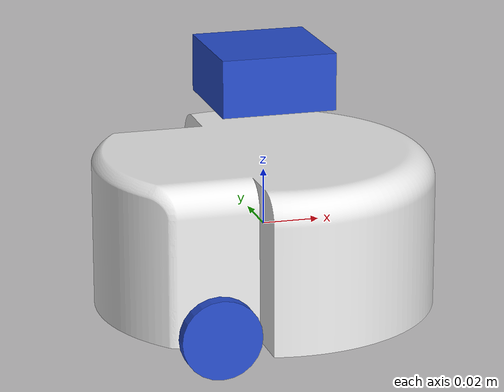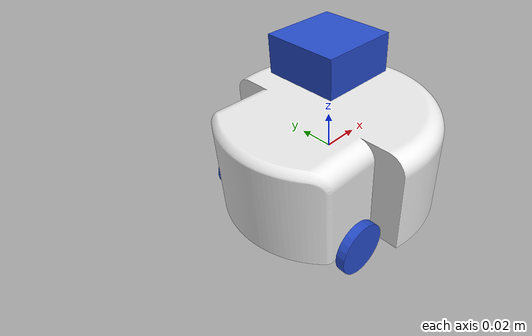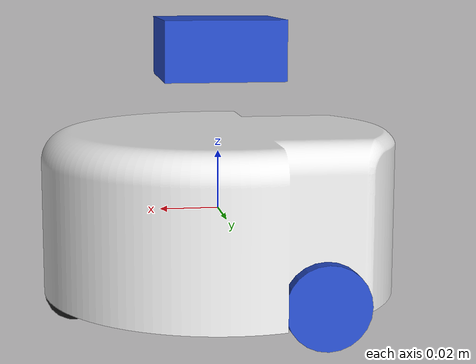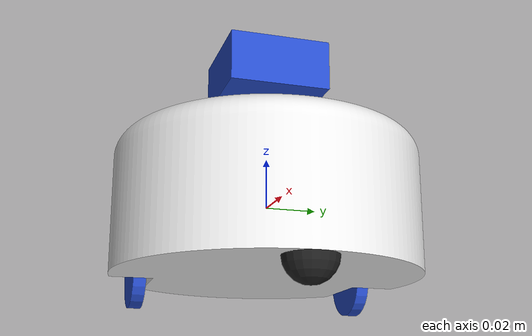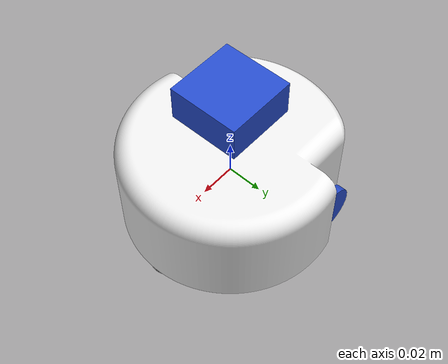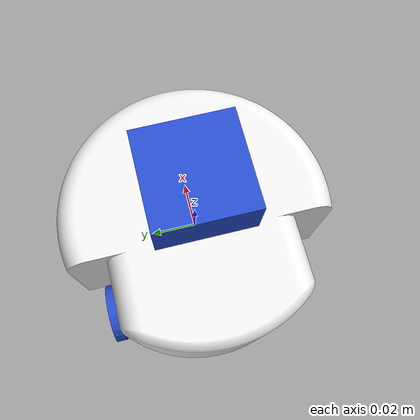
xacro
<?xml version="1.0"?>
<robot xmlns:xacro="http://www.ros.org/wiki/xacro" name="MyRobbie">

    <!-- Example link -->
    <xacro:include filename="robot_core.xacro"/>
    <xacro:include filename="properties.xacro"/>
    <xacro:include filename="inertial_macros.xacro"/>
    <xacro:include filename="gazebo_control.xacro"/>
    <xacro:include filename="gazebo_sensor.xacro"/>

</robot>

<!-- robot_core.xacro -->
<robot xmlns:xacro="http://www.ros.org/wiki/xacro">

    <xacro:include filename="inertial_macros.xacro"/>

    <!-- dimension de las piezas de robot -->
    <xacro:property name="ancho_r" value="0.005" />
    <xacro:property name="radio_r" value="0.014" />
    <xacro:property name="radio_e" value="0.01" />

    <!-- link para la odometria -->
    <link name="base_footprint">
    </link>

    <joint name="base_footprint_joint" type="fixed">
        <parent link="base_link"/>
        <child link="base_footprint"/>
        <origin xyz="0 0 0"/>
    </joint>

    <!-- base del robot -->
    <link name="base_link">
    </link>

    <joint name="base_link" type="fixed">
        <parent link="base_link"/>
        <child link="chassis"/>
        <origin xyz="0 0 0"/>
    </joint>

    <!-- chassis link -->
    <link name="chassis">
        <visual>
            <origin xyz="0.0 0 0.0"/>
            <geometry>
                <mesh filename="file://$(find proyecto_myrobbie3)/meshes/chassis.dae"/>
            </geometry>
            <material name="white"/>
        </visual>
        <collision>
            <origin xyz="0.0 0.0 0.0"/>
            <geometry>
                <mesh filename="file://$(find proyecto_myrobbie3)/meshes/chassis.dae"/>
            </geometry>
        </collision>

        <xacro:inertial_box mass="0.32" x="0.12" y="0.08" z="0.05">
            <origin xyz="0.0 0.0 0.0" rpy="0.0 0.0 0.0"/>
        </xacro:inertial_box>
    </link>

    <!-- left wheel joint -->
    <joint name="left_wheel_joint" type="continuous">
        <parent link="chassis"/>
        <child link="left_wheel"/>
        <origin xyz="-0.0283 0.0465 -0.0235" rpy="-${pi/2} 0 0"/>
        <axis xyz="0 0 1"/>
    </joint>

    <!-- left wheel link -->
    <link name="left_wheel">
        <visual>
            <geometry>
                <cylinder radius="${radio_r}" length="${ancho_r}"/>
            </geometry>
            <material name="blue"/>
        </visual>
        <collision>
            <geometry>
                <cylinder radius="${radio_r}" length="${ancho_r}"/>
            </geometry>
        </collision>

        <xacro:inertial_cylinder mass="0.04" length="${ancho_r}" radius="${radio_r}">
            <origin xyz="0 0 0" rpy="0 0 0"/>
        </xacro:inertial_cylinder>
    </link>

    <!-- right wheel joint -->
    <joint name="right_wheel_joint" type="continuous">
        <parent link="chassis"/>
        <child link="right_wheel"/>
        <origin xyz="-0.0283 -0.0465 -0.0235" rpy="${pi/2} 0 0"/>
        <axis xyz="0 0 -1"/>
    </joint>

    <!-- right wheel link -->
    <link name="right_wheel">
        <visual>
            <geometry>
                <cylinder radius="${radio_r}" length="${ancho_r}"/>
            </geometry>
            <material name="blue"/>
        </visual>
        <collision>
            <geometry>
                <cylinder radius="${radio_r}" length="${ancho_r}"/>
            </geometry>
        </collision>

        <xacro:inertial_cylinder mass="0.04" length="${ancho_r}" radius="${radio_r}">
            <origin xyz="0 0 0" rpy="0 0 0"/>
        </xacro:inertial_cylinder>

    </link>

    <!-- caster wheel joint -->
    <joint name="caster_wheel_joint" type="fixed">
        <parent link="chassis"/>
        <child link="caster_wheel"/>
        <origin xyz="0.05 0 -0.0275"/>
    </joint>

    <!-- caster wheels -->
    <link name="caster_wheel">
        <visual>
            <geometry>
                <sphere radius="${radio_e}"/>
            </geometry>
            <material name="black"/>
        </visual>
        <collision>
            <geometry>
                <sphere radius="${radio_e}"/>
            </geometry>
        </collision>

        <xacro:inertial_sphere mass="0.03" radius="${radio_e}">
            <origin xyz="0 0 0" rpy="0 0 0"/>
        </xacro:inertial_sphere>
    </link>

    <!-- sensor tof -->
    <link name="laser_frame">
        <visual>
            <origin xyz="0.0 0 0.0"/>
            <geometry>
                <box size="0.04 0.04 0.02"/>
            </geometry>
            <material name="blue"/>
        </visual>
        <collision>
            <origin xyz="0.0 0.0 0.0"/>
            <geometry>
                <box size="0.04 0.04 0.02"/>
            </geometry>
        </collision>

        <xacro:inertial_box mass="0.02" x="0.04" y="0.04" z="0.02">
            <origin xyz="0.0 0.0 0.0" rpy="0.0 0.0 0.0"/>
        </xacro:inertial_box>
    </link>

    <joint name="joint_chassis" type="fixed">
        <origin xyz="0.0 0.0 0.055" rpy="0.0 0.0 0.0"/>
        <parent link="chassis"/>
        <child link="laser_frame"/>
    </joint>

    <gazebo reference="chassis">
        <material>Gazebo/White</material>
    </gazebo>

    <gazebo reference="left_wheel">
        <material>Gazebo/Blue</material>
    </gazebo>

    <gazebo reference="right_wheel">
        <material>Gazebo/Blue</material>
    </gazebo>

    <gazebo reference="caster_wheel">
        <material>Gazebo/Black</material>
        <mu1 value = "0.001" />
        <mu2 value = "0.001" />
    </gazebo>

    <gazebo reference="laser_frame">
        <material>Gazebo/Blue</material>
    </gazebo>

</robot>
